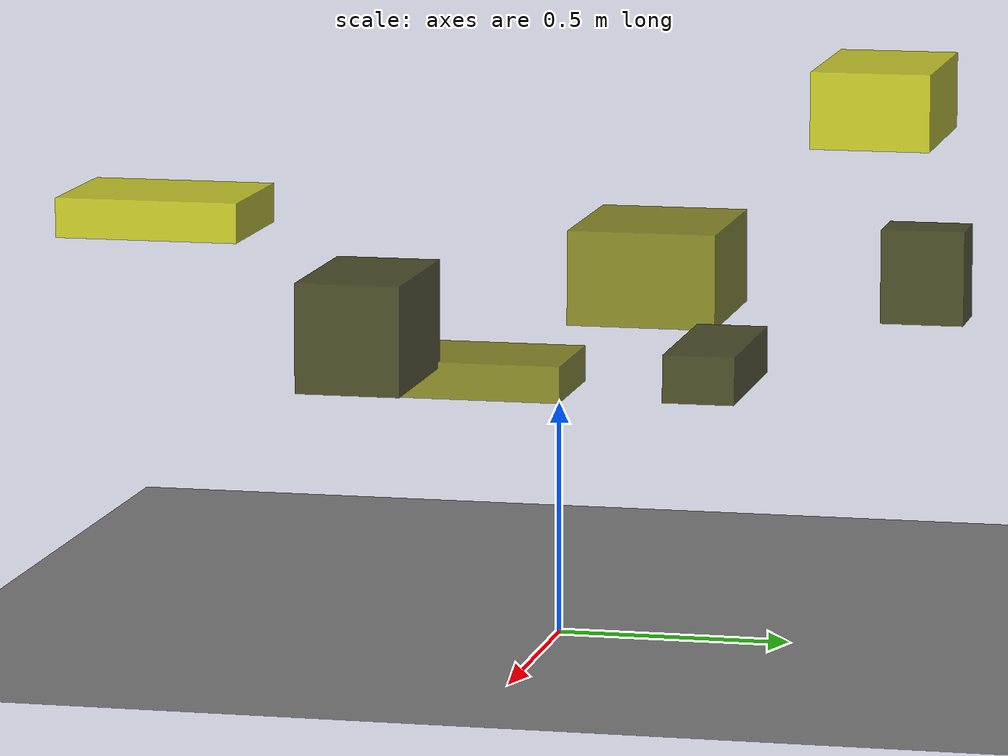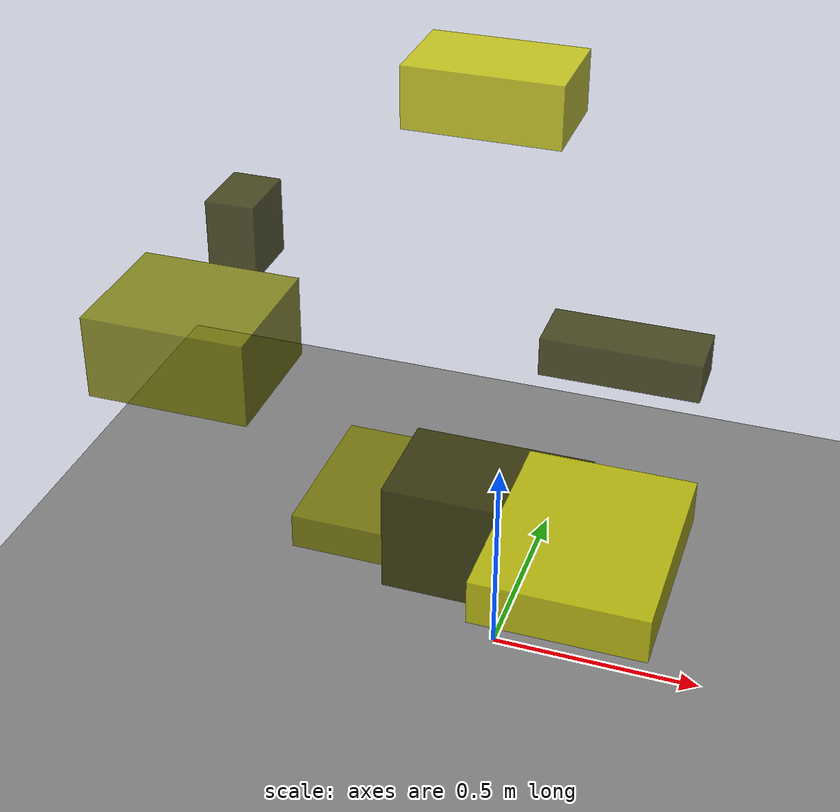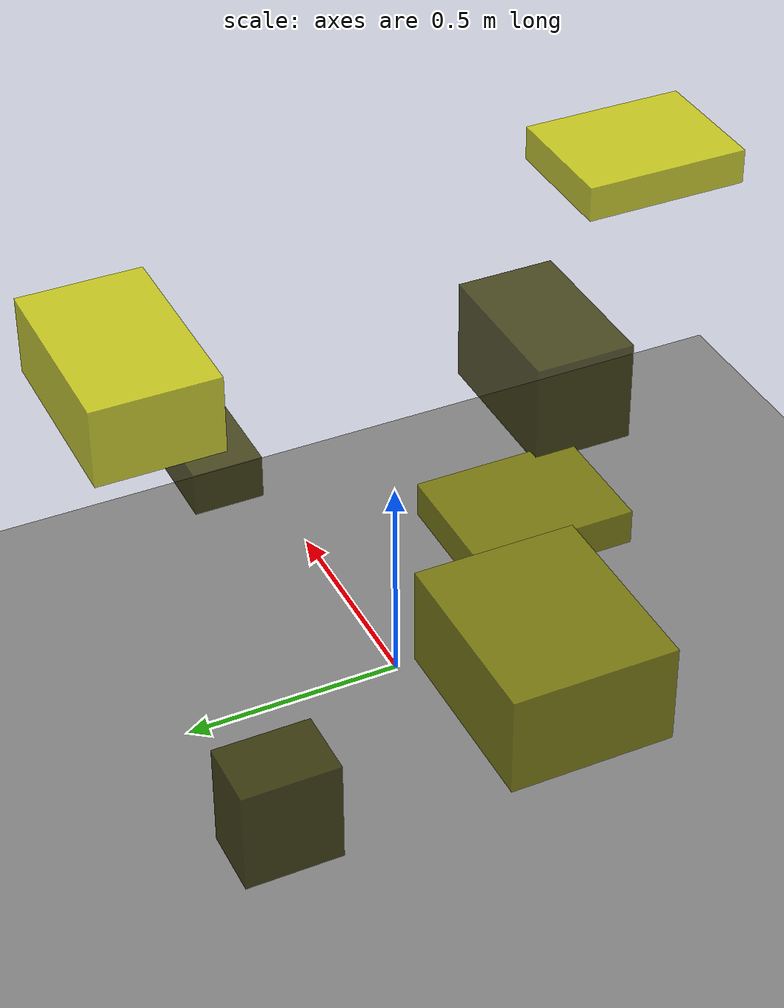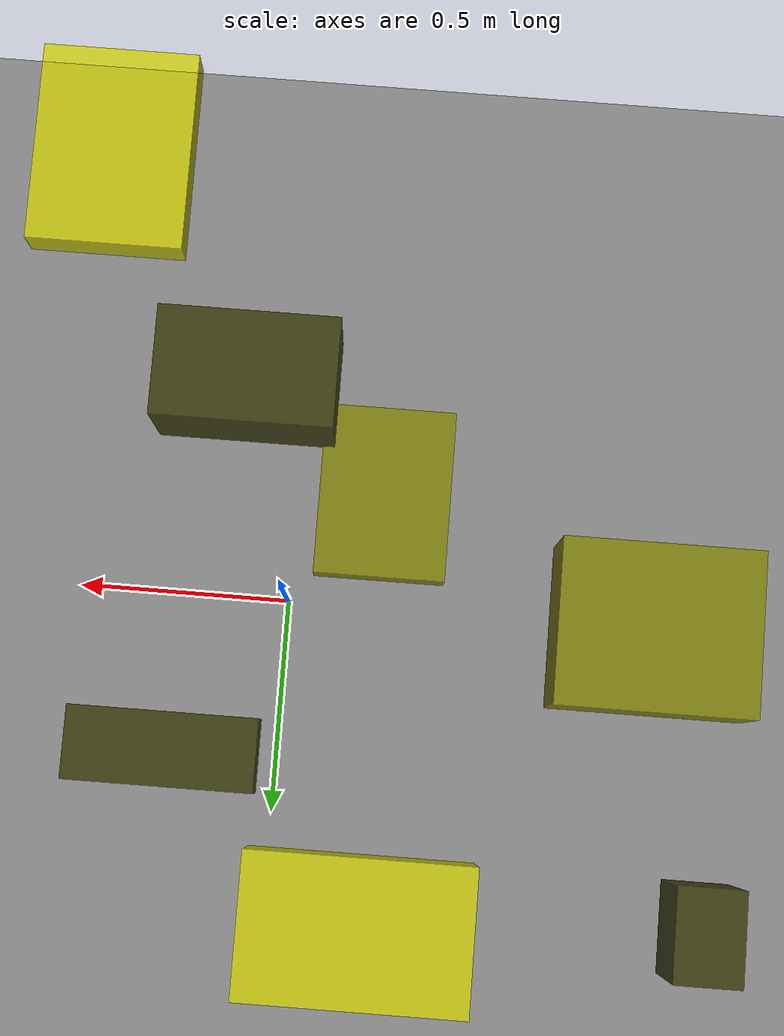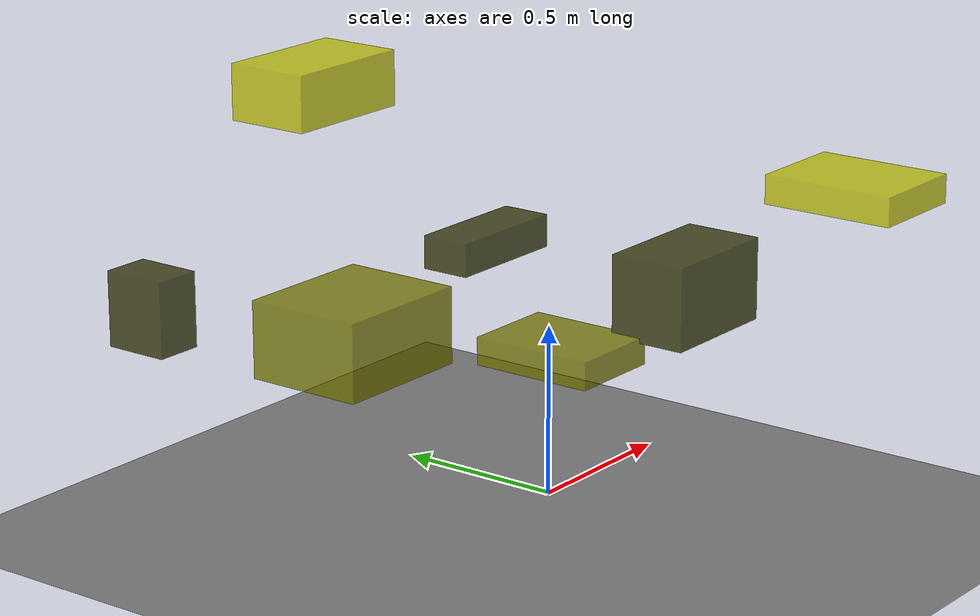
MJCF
<?xml version="1.0"?>
<mujoco model="obstacle_scene">
  <compiler angle="radian" coordinate="local"/>
  <option timestep="0.001" gravity="0 0 -9.81"/>

  <asset>
    <material name="obstacle_mat" rgba="0.8 0.8 0.0 0.8"/>
    <material name="ground_mat" rgba="0.5 0.5 0.5 1"/>
  </asset>

  <worldbody>
    <!-- Ground plane -->
    <geom name="ground" type="plane" size="3 3 0.1" material="ground_mat"/>

    <!-- Obstacles -->
    <body name="obstacle_0" pos="0.199624 0.374873 0.634183">
      <geom name="obs_0" type="box" size="0.194258 0.075084 0.049663" rgba="0.2 0.2 0.0 0.8"/>
    </body>
    <body name="obstacle_1" pos="-0.212286 -0.197246 0.524028">
      <geom name="obs_1" type="box" size="0.138457 0.180443 0.039548" rgba="0.5 0.5 0.0 0.8"/>
    </body>
    <body name="obstacle_2" pos="0.360951 -0.764518 0.946122">
      <geom name="obs_2" type="box" size="0.150935 0.193740 0.041331" rgba="0.8 0.8 0.0 0.8"/>
    </body>
    <body name="obstacle_3" pos="-0.907668 0.654474 0.657789">
      <geom name="obs_3" type="box" size="0.068203 0.094320 0.106810" rgba="0.2 0.2 0.0 0.8"/>
    </body>
    <body name="obstacle_4" pos="-0.776033 0.061795 0.673839">
      <geom name="obs_4" type="box" size="0.201998 0.167768 0.106471" rgba="0.5 0.5 0.0 0.8"/>
    </body>
    <body name="obstacle_5" pos="-0.220680 0.660127 1.142158">
      <geom name="obs_5" type="box" size="0.201921 0.126952 0.081432" rgba="0.8 0.8 0.0 0.8"/>
    </body>
    <body name="obstacle_6" pos="0.087309 -0.398524 0.667343">
      <geom name="obs_6" type="box" size="0.185992 0.113294 0.117721" rgba="0.2 0.2 0.0 0.8"/>
    </body>
  </worldbody>
</mujoco>
